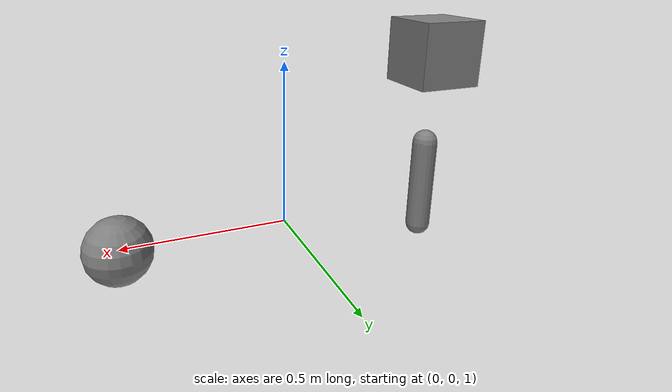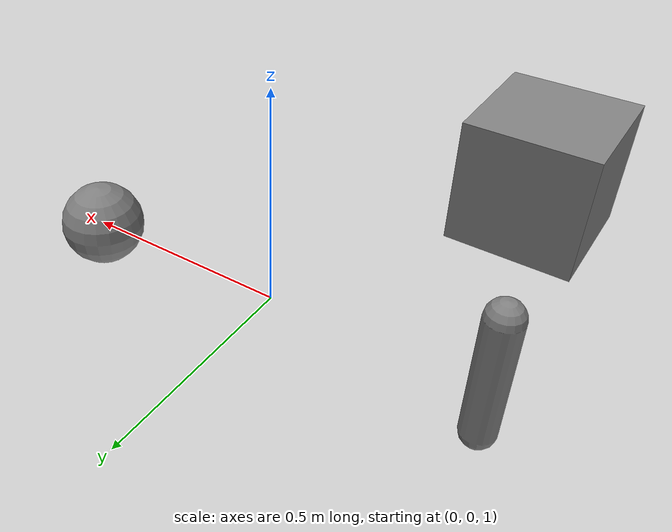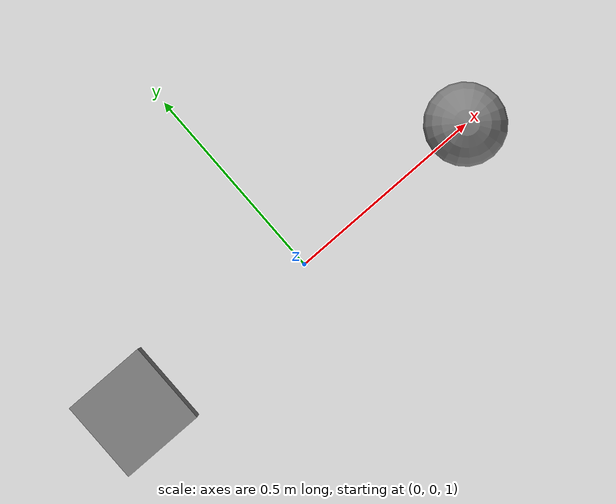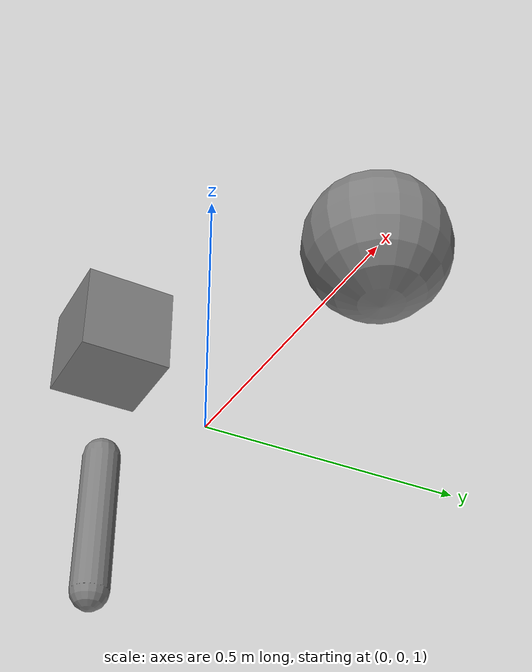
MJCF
<mujoco>
          <option gravity="0 0 -9.81" timestep="0.001" solver="Newton"
                  iterations="100" tolerance="1e-12"/>
          <worldbody>
            <body name="base" pos="-0.5 0 1.5">
              <freejoint/>
              <geom type="box" size="0.1 0.1 0.1" mass="1"/>
            </body>
            <body name="arm" pos="-0.5 0 1.2">
              <freejoint/>
              <geom type="capsule" fromto="0 0 0 0 0 -0.3" size="0.04" mass="0.5"/>
            </body>
            <body name="fixed" pos="0.5 0 1">
              <freejoint/>
              <geom type="sphere" size="0.1" mass="1"/>
            </body>
          </worldbody>
          <equality>
            <weld body1="base" body2="arm"/>
            <weld body1="fixed"/>
          </equality>
        </mujoco>
